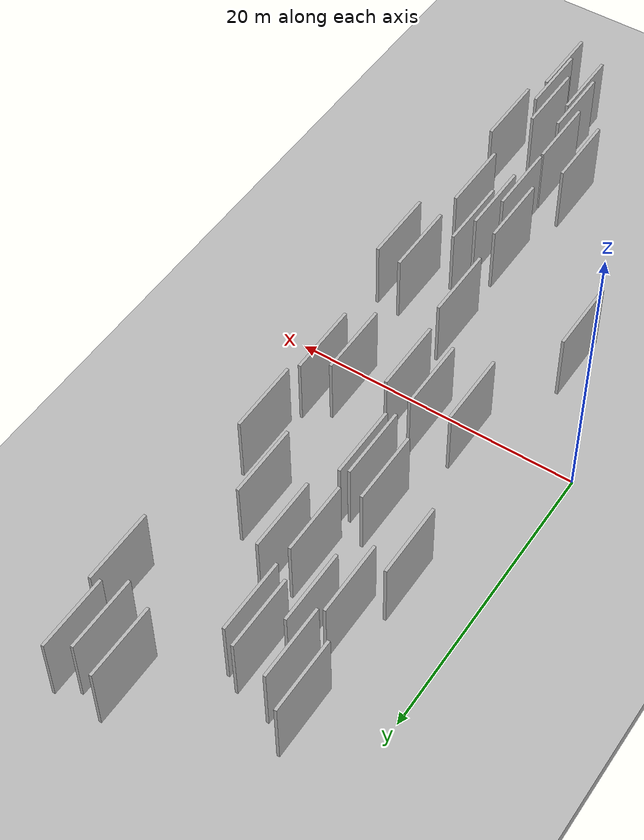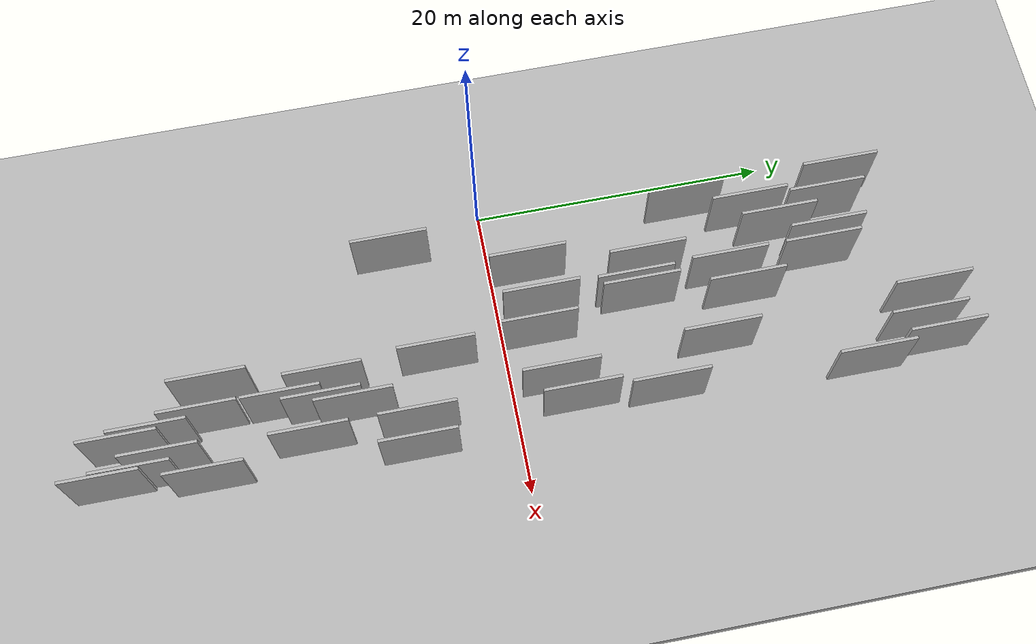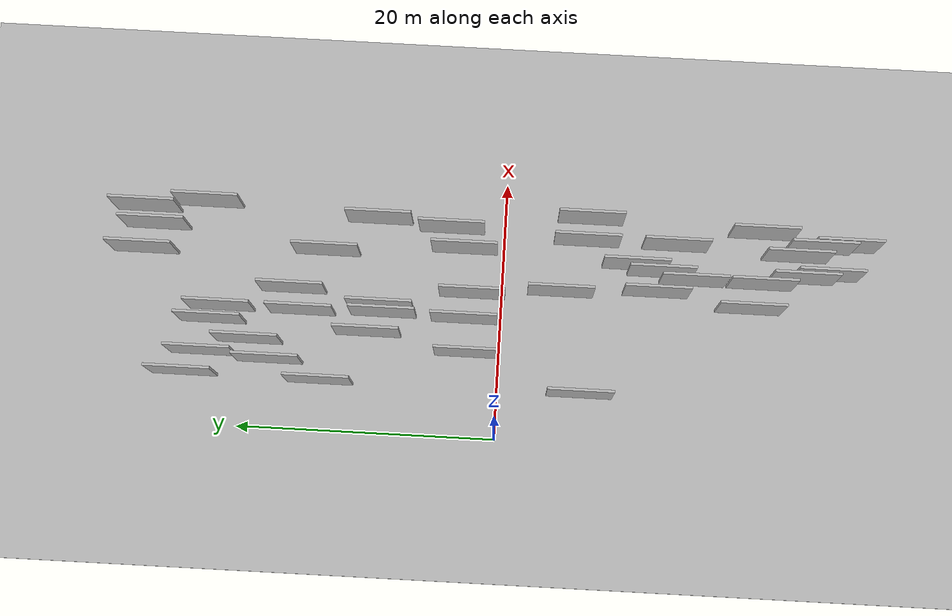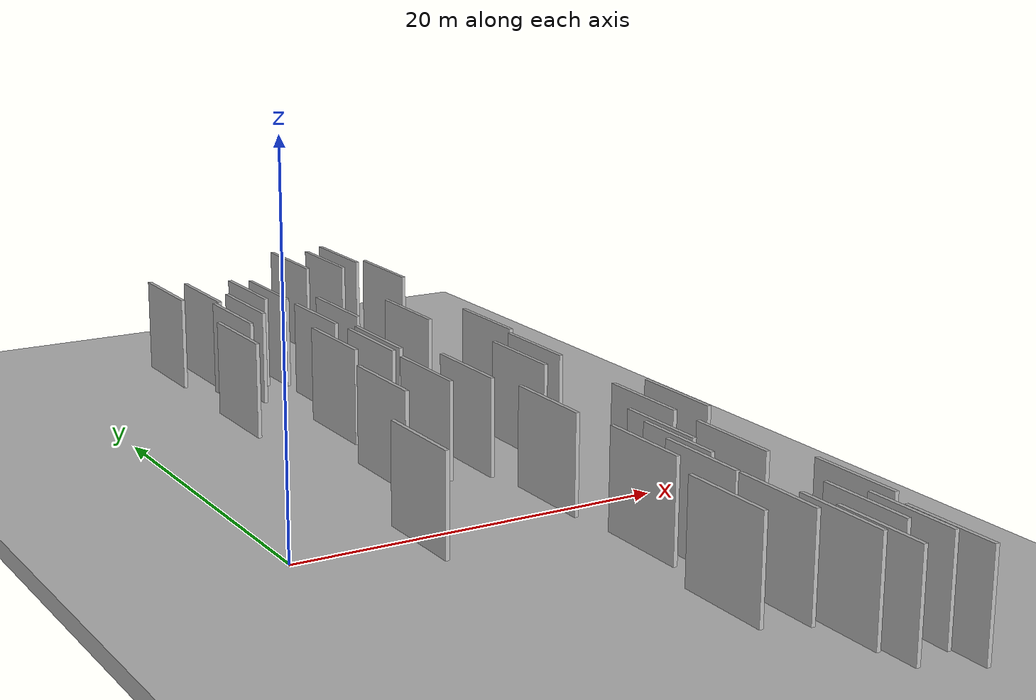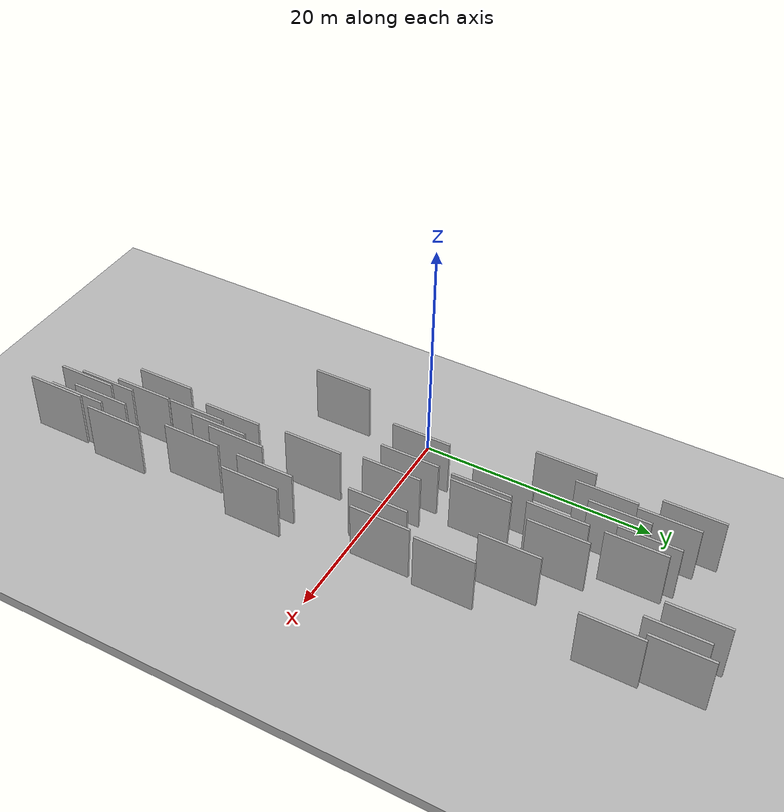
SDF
<?xml version="1.0" encoding="utf-8"?>

<sdf version="1.6">

   <world name="default">

      <gui fullscreen="0">

         <camera name="user_camera">

            <pose>-15 0 4.57585 0 0 0</pose>

            <view_controller>orbit</view_controller>

         </camera>

      </gui>

      <scene>

         <sky>

           <clouds>

             <speed>12</speed>

           </clouds>

         </sky>

         <ambient>0.4 0.4 0.4 1</ambient>

         <background>0.7 0.7 0.7 1</background>

         <shadows>1</shadows>

      </scene>

      <gravity>0 0 -9.8066</gravity>

      <magnetic_field>6e-06 2.3e-05 -4.2e-05</magnetic_field>

      <physics default="0" name="default_physics" type="ode">

         <ode>

            <solver>

               <type>quick</type>

               <iters>10</iters>

               <sor>1.0</sor>

               <use_dynamic_moi_rescaling>0</use_dynamic_moi_rescaling>

            </solver>

            <constraints>

               <cfm>0</cfm>

               <erp>0.2</erp>

               <contact_max_correcting_vel>100</contact_max_correcting_vel>

               <contact_surface_layer>0.001</contact_surface_layer>

            </constraints>

         </ode>

         <max_step_size>0.004</max_step_size>

         <real_time_factor>1</real_time_factor>

         <real_time_update_rate>250</real_time_update_rate>

      </physics>

      <light name="sun" type="directional">

         <cast_shadows>1</cast_shadows>

         <pose>0 0 10 0 0 0</pose>

         <diffuse>0.8 0.8 0.8 1</diffuse>

         <specular>0.2 0.2 0.2 1</specular>

         <attenuation>

            <range>1000</range>

            <constant>0.9</constant>

            <linear>0.01</linear>

            <quadratic>0.001</quadratic>

         </attenuation>

         <direction>-0.5 0.1 -0.9</direction>

      </light>

      <include>

         <name>ground_plane_1</name>

         <uri>model://HANNAS_ground_plane</uri>

         <pose>0 0 0  0 0 0</pose>

      </include>

      <include>

         <name>ground_plane_2</name>

         <uri>model://HANNAS_ground_plane</uri>

         <pose>100 0 0  0 0 0</pose>

      </include>

      <model name="HANNAS_wall_1">

         <static>1</static>

         <pose frame="">12.9203 27.4622 2.5 0.000000 0.000000 1.570796</pose>

         <link name="link">

            <pose frame="">0 0 2.50 0 0 0</pose>

            <collision name="collision">

               <geometry>

                  <box>

                     <size>5.00 0.2 5.00</size>

                  </box>

               </geometry>

               <max_contacts>10</max_contacts>

               <surface>

                  <contact>

                     <ode/>

                  </contact>

                  <bounce/>

                  <friction>

                     <torsional>

                        <ode/>

                     </torsional>

                     <ode/>

                  </friction>

               </surface>

            </collision>

            <visual name="visual">

               <cast_shadows>0</cast_shadows>

               <geometry>

                  <box>

                     <size>5.00 0.2 5.00</size>

                  </box>

               </geometry>

               <material>

                  <script>

                     <uri>model://HANNAS_wall/materials/scripts</uri>

                     <uri>model://HANNAS_wall/materials/textures</uri>

                     <name>vrc/HANNAS_wall</name>

                  </script>

               </material>

            </visual>

            <self_collide>0</self_collide>

            <enable_wind>0</enable_wind>

            <kinematic>0</kinematic>

         </link>

      </model>

      <model name="HANNAS_wall_2">

         <static>1</static>

         <pose frame="">11.5461 -11.6714 2.5 0.000000 0.000000 1.570796</pose>

         <link name="link">

            <pose frame="">0 0 2.50 0 0 0</pose>

            <collision name="collision">

               <geometry>

                  <box>

                     <size>5.00 0.2 5.00</size>

                  </box>

               </geometry>

               <max_contacts>10</max_contacts>

               <surface>

                  <contact>

                     <ode/>

                  </contact>

                  <bounce/>

                  <friction>

                     <torsional>

                        <ode/>

                     </torsional>

                     <ode/>

                  </friction>

               </surface>

            </collision>

            <visual name="visual">

               <cast_shadows>0</cast_shadows>

               <geometry>

                  <box>

                     <size>5.00 0.2 5.00</size>

                  </box>

               </geometry>

               <material>

                  <script>

                     <uri>model://HANNAS_wall/materials/scripts</uri>

                     <uri>model://HANNAS_wall/materials/textures</uri>

                     <name>vrc/HANNAS_wall</name>

                  </script>

               </material>

            </visual>

            <self_collide>0</self_collide>

            <enable_wind>0</enable_wind>

            <kinematic>0</kinematic>

         </link>

      </model>

      <model name="HANNAS_wall_3">

         <static>1</static>

         <pose frame="">10.7123 2.2798 2.5 0.000000 0.000000 1.570796</pose>

         <link name="link">

            <pose frame="">0 0 2.50 0 0 0</pose>

            <collision name="collision">

               <geometry>

                  <box>

                     <size>5.00 0.2 5.00</size>

                  </box>

               </geometry>

               <max_contacts>10</max_contacts>

               <surface>

                  <contact>

                     <ode/>

                  </contact>

                  <bounce/>

                  <friction>

                     <torsional>

                        <ode/>

                     </torsional>

                     <ode/>

                  </friction>

               </surface>

            </collision>

            <visual name="visual">

               <cast_shadows>0</cast_shadows>

               <geometry>

                  <box>

                     <size>5.00 0.2 5.00</size>

                  </box>

               </geometry>

               <material>

                  <script>

                     <uri>model://HANNAS_wall/materials/scripts</uri>

                     <uri>model://HANNAS_wall/materials/textures</uri>

                     <name>vrc/HANNAS_wall</name>

                  </script>

               </material>

            </visual>

            <self_collide>0</self_collide>

            <enable_wind>0</enable_wind>

            <kinematic>0</kinematic>

         </link>

      </model>

      <model name="HANNAS_wall_4">

         <static>1</static>

         <pose frame="">15.6072 -24.0280 2.5 0.000000 0.000000 1.570796</pose>

         <link name="link">

            <pose frame="">0 0 2.50 0 0 0</pose>

            <collision name="collision">

               <geometry>

                  <box>

                     <size>5.00 0.2 5.00</size>

                  </box>

               </geometry>

               <max_contacts>10</max_contacts>

               <surface>

                  <contact>

                     <ode/>

                  </contact>

                  <bounce/>

                  <friction>

                     <torsional>

                        <ode/>

                     </torsional>

                     <ode/>

                  </friction>

               </surface>

            </collision>

            <visual name="visual">

               <cast_shadows>0</cast_shadows>

               <geometry>

                  <box>

                     <size>5.00 0.2 5.00</size>

                  </box>

               </geometry>

               <material>

                  <script>

                     <uri>model://HANNAS_wall/materials/scripts</uri>

                     <uri>model://HANNAS_wall/materials/textures</uri>

                     <name>vrc/HANNAS_wall</name>

                  </script>

               </material>

            </visual>

            <self_collide>0</self_collide>

            <enable_wind>0</enable_wind>

            <kinematic>0</kinematic>

         </link>

      </model>

      <model name="HANNAS_wall_5">

         <static>1</static>

         <pose frame="">16.7725 22.7189 2.5 0.000000 0.000000 1.570796</pose>

         <link name="link">

            <pose frame="">0 0 2.50 0 0 0</pose>

            <collision name="collision">

               <geometry>

                  <box>

                     <size>5.00 0.2 5.00</size>

                  </box>

               </geometry>

               <max_contacts>10</max_contacts>

               <surface>

                  <contact>

                     <ode/>

                  </contact>

                  <bounce/>

                  <friction>

                     <torsional>

                        <ode/>

                     </torsional>

                     <ode/>

                  </friction>

               </surface>

            </collision>

            <visual name="visual">

               <cast_shadows>0</cast_shadows>

               <geometry>

                  <box>

                     <size>5.00 0.2 5.00</size>

                  </box>

               </geometry>

               <material>

                  <script>

                     <uri>model://HANNAS_wall/materials/scripts</uri>

                     <uri>model://HANNAS_wall/materials/textures</uri>

                     <name>vrc/HANNAS_wall</name>

                  </script>

               </material>

            </visual>

            <self_collide>0</self_collide>

            <enable_wind>0</enable_wind>

            <kinematic>0</kinematic>

         </link>

      </model>

      <model name="HANNAS_wall_6">

         <static>1</static>

         <pose frame="">16.1459 9.6242 2.5 0.000000 0.000000 1.570796</pose>

         <link name="link">

            <pose frame="">0 0 2.50 0 0 0</pose>

            <collision name="collision">

               <geometry>

                  <box>

                     <size>5.00 0.2 5.00</size>

                  </box>

               </geometry>

               <max_contacts>10</max_contacts>

               <surface>

                  <contact>

                     <ode/>

                  </contact>

                  <bounce/>

                  <friction>

                     <torsional>

                        <ode/>

                     </torsional>

                     <ode/>

                  </friction>

               </surface>

            </collision>

            <visual name="visual">

               <cast_shadows>0</cast_shadows>

               <geometry>

                  <box>

                     <size>5.00 0.2 5.00</size>

                  </box>

               </geometry>

               <material>

                  <script>

                     <uri>model://HANNAS_wall/materials/scripts</uri>

                     <uri>model://HANNAS_wall/materials/textures</uri>

                     <name>vrc/HANNAS_wall</name>

                  </script>

               </material>

            </visual>

            <self_collide>0</self_collide>

            <enable_wind>0</enable_wind>

            <kinematic>0</kinematic>

         </link>

      </model>

      <model name="HANNAS_wall_7">

         <static>1</static>

         <pose frame="">13.1717 -22.7713 2.5 0.000000 0.000000 1.570796</pose>

         <link name="link">

            <pose frame="">0 0 2.50 0 0 0</pose>

            <collision name="collision">

               <geometry>

                  <box>

                     <size>5.00 0.2 5.00</size>

                  </box>

               </geometry>

               <max_contacts>10</max_contacts>

               <surface>

                  <contact>

                     <ode/>

                  </contact>

                  <bounce/>

                  <friction>

                     <torsional>

                        <ode/>

                     </torsional>

                     <ode/>

                  </friction>

               </surface>

            </collision>

            <visual name="visual">

               <cast_shadows>0</cast_shadows>

               <geometry>

                  <box>

                     <size>5.00 0.2 5.00</size>

                  </box>

               </geometry>

               <material>

                  <script>

                     <uri>model://HANNAS_wall/materials/scripts</uri>

                     <uri>model://HANNAS_wall/materials/textures</uri>

                     <name>vrc/HANNAS_wall</name>

                  </script>

               </material>

            </visual>

            <self_collide>0</self_collide>

            <enable_wind>0</enable_wind>

            <kinematic>0</kinematic>

         </link>

      </model>

      <model name="HANNAS_wall_8">

         <static>1</static>

         <pose frame="">4.8966 17.3960 2.5 0.000000 0.000000 1.570796</pose>

         <link name="link">

            <pose frame="">0 0 2.50 0 0 0</pose>

            <collision name="collision">

               <geometry>

                  <box>

                     <size>5.00 0.2 5.00</size>

                  </box>

               </geometry>

               <max_contacts>10</max_contacts>

               <surface>

                  <contact>

                     <ode/>

                  </contact>

                  <bounce/>

                  <friction>

                     <torsional>

                        <ode/>

                     </torsional>

                     <ode/>

                  </friction>

               </surface>

            </collision>

            <visual name="visual">

               <cast_shadows>0</cast_shadows>

               <geometry>

                  <box>

                     <size>5.00 0.2 5.00</size>

                  </box>

               </geometry>

               <material>

                  <script>

                     <uri>model://HANNAS_wall/materials/scripts</uri>

                     <uri>model://HANNAS_wall/materials/textures</uri>

                     <name>vrc/HANNAS_wall</name>

                  </script>

               </material>

            </visual>

            <self_collide>0</self_collide>

            <enable_wind>0</enable_wind>

            <kinematic>0</kinematic>

         </link>

      </model>

      <model name="HANNAS_wall_9">

         <static>1</static>

         <pose frame="">14.8341 -22.2336 2.5 0.000000 0.000000 1.570796</pose>

         <link name="link">

            <pose frame="">0 0 2.50 0 0 0</pose>

            <collision name="collision">

               <geometry>

                  <box>

                     <size>5.00 0.2 5.00</size>

                  </box>

               </geometry>

               <max_contacts>10</max_contacts>

               <surface>

                  <contact>

                     <ode/>

                  </contact>

                  <bounce/>

                  <friction>

                     <torsional>

                        <ode/>

                     </torsional>

                     <ode/>

                  </friction>

               </surface>

            </collision>

            <visual name="visual">

               <cast_shadows>0</cast_shadows>

               <geometry>

                  <box>

                     <size>5.00 0.2 5.00</size>

                  </box>

               </geometry>

               <material>

                  <script>

                     <uri>model://HANNAS_wall/materials/scripts</uri>

                     <uri>model://HANNAS_wall/materials/textures</uri>

                     <name>vrc/HANNAS_wall</name>

                  </script>

               </material>

            </visual>

            <self_collide>0</self_collide>

            <enable_wind>0</enable_wind>

            <kinematic>0</kinematic>

         </link>

      </model>

      <model name="HANNAS_wall_10">

         <static>1</static>

         <pose frame="">13.5826 -10.0143 2.5 0.000000 0.000000 1.570796</pose>

         <link name="link">

            <pose frame="">0 0 2.50 0 0 0</pose>

            <collision name="collision">

               <geometry>

                  <box>

                     <size>5.00 0.2 5.00</size>

                  </box>

               </geometry>

               <max_contacts>10</max_contacts>

               <surface>

                  <contact>

                     <ode/>

                  </contact>

                  <bounce/>

                  <friction>

                     <torsional>

                        <ode/>

                     </torsional>

                     <ode/>

                  </friction>

               </surface>

            </collision>

            <visual name="visual">

               <cast_shadows>0</cast_shadows>

               <geometry>

                  <box>

                     <size>5.00 0.2 5.00</size>

                  </box>

               </geometry>

               <material>

                  <script>

                     <uri>model://HANNAS_wall/materials/scripts</uri>

                     <uri>model://HANNAS_wall/materials/textures</uri>

                     <name>vrc/HANNAS_wall</name>

                  </script>

               </material>

            </visual>

            <self_collide>0</self_collide>

            <enable_wind>0</enable_wind>

            <kinematic>0</kinematic>

         </link>

      </model>

      <model name="HANNAS_wall_11">

         <static>1</static>

         <pose frame="">6.3353 19.0176 2.5 0.000000 0.000000 1.570796</pose>

         <link name="link">

            <pose frame="">0 0 2.50 0 0 0</pose>

            <collision name="collision">

               <geometry>

                  <box>

                     <size>5.00 0.2 5.00</size>

                  </box>

               </geometry>

               <max_contacts>10</max_contacts>

               <surface>

                  <contact>

                     <ode/>

                  </contact>

                  <bounce/>

                  <friction>

                     <torsional>

                        <ode/>

                     </torsional>

                     <ode/>

                  </friction>

               </surface>

            </collision>

            <visual name="visual">

               <cast_shadows>0</cast_shadows>

               <geometry>

                  <box>

                     <size>5.00 0.2 5.00</size>

                  </box>

               </geometry>

               <material>

                  <script>

                     <uri>model://HANNAS_wall/materials/scripts</uri>

                     <uri>model://HANNAS_wall/materials/textures</uri>

                     <name>vrc/HANNAS_wall</name>

                  </script>

               </material>

            </visual>

            <self_collide>0</self_collide>

            <enable_wind>0</enable_wind>

            <kinematic>0</kinematic>

         </link>

      </model>

      <model name="HANNAS_wall_12">

         <static>1</static>

         <pose frame="">8.9002 8.9577 2.5 0.000000 0.000000 1.570796</pose>

         <link name="link">

            <pose frame="">0 0 2.50 0 0 0</pose>

            <collision name="collision">

               <geometry>

                  <box>

                     <size>5.00 0.2 5.00</size>

                  </box>

               </geometry>

               <max_contacts>10</max_contacts>

               <surface>

                  <contact>

                     <ode/>

                  </contact>

                  <bounce/>

                  <friction>

                     <torsional>

                        <ode/>

                     </torsional>

                     <ode/>

                  </friction>

               </surface>

            </collision>

            <visual name="visual">

               <cast_shadows>0</cast_shadows>

               <geometry>

                  <box>

                     <size>5.00 0.2 5.00</size>

                  </box>

               </geometry>

               <material>

                  <script>

                     <uri>model://HANNAS_wall/materials/scripts</uri>

                     <uri>model://HANNAS_wall/materials/textures</uri>

                     <name>vrc/HANNAS_wall</name>

                  </script>

               </material>

            </visual>

            <self_collide>0</self_collide>

            <enable_wind>0</enable_wind>

            <kinematic>0</kinematic>

         </link>

      </model>

      <model name="HANNAS_wall_13">

         <static>1</static>

         <pose frame="">3.5009 13.4850 2.5 0.000000 0.000000 1.570796</pose>

         <link name="link">

            <pose frame="">0 0 2.50 0 0 0</pose>

            <collision name="collision">

               <geometry>

                  <box>

                     <size>5.00 0.2 5.00</size>

                  </box>

               </geometry>

               <max_contacts>10</max_contacts>

               <surface>

                  <contact>

                     <ode/>

                  </contact>

                  <bounce/>

                  <friction>

                     <torsional>

                        <ode/>

                     </torsional>

                     <ode/>

                  </friction>

               </surface>

            </collision>

            <visual name="visual">

               <cast_shadows>0</cast_shadows>

               <geometry>

                  <box>

                     <size>5.00 0.2 5.00</size>

                  </box>

               </geometry>

               <material>

                  <script>

                     <uri>model://HANNAS_wall/materials/scripts</uri>

                     <uri>model://HANNAS_wall/materials/textures</uri>

                     <name>vrc/HANNAS_wall</name>

                  </script>

               </material>

            </visual>

            <self_collide>0</self_collide>

            <enable_wind>0</enable_wind>

            <kinematic>0</kinematic>

         </link>

      </model>

      <model name="HANNAS_wall_14">

         <static>1</static>

         <pose frame="">16.9659 -6.4878 2.5 0.000000 0.000000 1.570796</pose>

         <link name="link">

            <pose frame="">0 0 2.50 0 0 0</pose>

            <collision name="collision">

               <geometry>

                  <box>

                     <size>5.00 0.2 5.00</size>

                  </box>

               </geometry>

               <max_contacts>10</max_contacts>

               <surface>

                  <contact>

                     <ode/>

                  </contact>

                  <bounce/>

                  <friction>

                     <torsional>

                        <ode/>

                     </torsional>

                     <ode/>

                  </friction>

               </surface>

            </collision>

            <visual name="visual">

               <cast_shadows>0</cast_shadows>

               <geometry>

                  <box>

                     <size>5.00 0.2 5.00</size>

                  </box>

               </geometry>

               <material>

                  <script>

                     <uri>model://HANNAS_wall/materials/scripts</uri>

                     <uri>model://HANNAS_wall/materials/textures</uri>

                     <name>vrc/HANNAS_wall</name>

                  </script>

               </material>

            </visual>

            <self_collide>0</self_collide>

            <enable_wind>0</enable_wind>

            <kinematic>0</kinematic>

         </link>

      </model>

      <model name="HANNAS_wall_15">

         <static>1</static>

         <pose frame="">10.4096 15.9132 2.5 0.000000 0.000000 1.570796</pose>

         <link name="link">

            <pose frame="">0 0 2.50 0 0 0</pose>

            <collision name="collision">

               <geometry>

                  <box>

                     <size>5.00 0.2 5.00</size>

                  </box>

               </geometry>

               <max_contacts>10</max_contacts>

               <surface>

                  <contact>

                     <ode/>

                  </contact>

                  <bounce/>

                  <friction>

                     <torsional>

                        <ode/>

                     </torsional>

                     <ode/>

                  </friction>

               </surface>

            </collision>

            <visual name="visual">

               <cast_shadows>0</cast_shadows>

               <geometry>

                  <box>

                     <size>5.00 0.2 5.00</size>

                  </box>

               </geometry>

               <material>

                  <script>

                     <uri>model://HANNAS_wall/materials/scripts</uri>

                     <uri>model://HANNAS_wall/materials/textures</uri>

                     <name>vrc/HANNAS_wall</name>

                  </script>

               </material>

            </visual>

            <self_collide>0</self_collide>

            <enable_wind>0</enable_wind>

            <kinematic>0</kinematic>

         </link>

      </model>

      <model name="HANNAS_wall_16">

         <static>1</static>

         <pose frame="">5.2708 22.4795 2.5 0.000000 0.000000 1.570796</pose>

         <link name="link">

            <pose frame="">0 0 2.50 0 0 0</pose>

            <collision name="collision">

               <geometry>

                  <box>

                     <size>5.00 0.2 5.00</size>

                  </box>

               </geometry>

               <max_contacts>10</max_contacts>

               <surface>

                  <contact>

                     <ode/>

                  </contact>

                  <bounce/>

                  <friction>

                     <torsional>

                        <ode/>

                     </torsional>

                     <ode/>

                  </friction>

               </surface>

            </collision>

            <visual name="visual">

               <cast_shadows>0</cast_shadows>

               <geometry>

                  <box>

                     <size>5.00 0.2 5.00</size>

                  </box>

               </geometry>

               <material>

                  <script>

                     <uri>model://HANNAS_wall/materials/scripts</uri>

                     <uri>model://HANNAS_wall/materials/textures</uri>

                     <name>vrc/HANNAS_wall</name>

                  </script>

               </material>

            </visual>

            <self_collide>0</self_collide>

            <enable_wind>0</enable_wind>

            <kinematic>0</kinematic>

         </link>

      </model>

      <model name="HANNAS_wall_17">

         <static>1</static>

         <pose frame="">7.3440 10.0413 2.5 0.000000 0.000000 1.570796</pose>

         <link name="link">

            <pose frame="">0 0 2.50 0 0 0</pose>

            <collision name="collision">

               <geometry>

                  <box>

                     <size>5.00 0.2 5.00</size>

                  </box>

               </geometry>

               <max_contacts>10</max_contacts>

               <surface>

                  <contact>

                     <ode/>

                  </contact>

                  <bounce/>

                  <friction>

                     <torsional>

                        <ode/>

                     </torsional>

                     <ode/>

                  </friction>

               </surface>

            </collision>

            <visual name="visual">

               <cast_shadows>0</cast_shadows>

               <geometry>

                  <box>

                     <size>5.00 0.2 5.00</size>

                  </box>

               </geometry>

               <material>

                  <script>

                     <uri>model://HANNAS_wall/materials/scripts</uri>

                     <uri>model://HANNAS_wall/materials/textures</uri>

                     <name>vrc/HANNAS_wall</name>

                  </script>

               </material>

            </visual>

            <self_collide>0</self_collide>

            <enable_wind>0</enable_wind>

            <kinematic>0</kinematic>

         </link>

      </model>

      <model name="HANNAS_wall_18">

         <static>1</static>

         <pose frame="">9.4286 9.1943 2.5 0.000000 0.000000 1.570796</pose>

         <link name="link">

            <pose frame="">0 0 2.50 0 0 0</pose>

            <collision name="collision">

               <geometry>

                  <box>

                     <size>5.00 0.2 5.00</size>

                  </box>

               </geometry>

               <max_contacts>10</max_contacts>

               <surface>

                  <contact>

                     <ode/>

                  </contact>

                  <bounce/>

                  <friction>

                     <torsional>

                        <ode/>

                     </torsional>

                     <ode/>

                  </friction>

               </surface>

            </collision>

            <visual name="visual">

               <cast_shadows>0</cast_shadows>

               <geometry>

                  <box>

                     <size>5.00 0.2 5.00</size>

                  </box>

               </geometry>

               <material>

                  <script>

                     <uri>model://HANNAS_wall/materials/scripts</uri>

                     <uri>model://HANNAS_wall/materials/textures</uri>

                     <name>vrc/HANNAS_wall</name>

                  </script>

               </material>

            </visual>

            <self_collide>0</self_collide>

            <enable_wind>0</enable_wind>

            <kinematic>0</kinematic>

         </link>

      </model>

      <model name="HANNAS_wall_19">

         <static>1</static>

         <pose frame="">12.5606 -14.4296 2.5 0.000000 0.000000 1.570796</pose>

         <link name="link">

            <pose frame="">0 0 2.50 0 0 0</pose>

            <collision name="collision">

               <geometry>

                  <box>

                     <size>5.00 0.2 5.00</size>

                  </box>

               </geometry>

               <max_contacts>10</max_contacts>

               <surface>

                  <contact>

                     <ode/>

                  </contact>

                  <bounce/>

                  <friction>

                     <torsional>

                        <ode/>

                     </torsional>

                     <ode/>

                  </friction>

               </surface>

            </collision>

            <visual name="visual">

               <cast_shadows>0</cast_shadows>

               <geometry>

                  <box>

                     <size>5.00 0.2 5.00</size>

                  </box>

               </geometry>

               <material>

                  <script>

                     <uri>model://HANNAS_wall/materials/scripts</uri>

                     <uri>model://HANNAS_wall/materials/textures</uri>

                     <name>vrc/HANNAS_wall</name>

                  </script>

               </material>

            </visual>

            <self_collide>0</self_collide>

            <enable_wind>0</enable_wind>

            <kinematic>0</kinematic>

         </link>

      </model>

      <model name="HANNAS_wall_20">

         <static>1</static>

         <pose frame="">10.6122 -18.8031 2.5 0.000000 0.000000 1.570796</pose>

         <link name="link">

            <pose frame="">0 0 2.50 0 0 0</pose>

            <collision name="collision">

               <geometry>

                  <box>

                     <size>5.00 0.2 5.00</size>

                  </box>

               </geometry>

               <max_contacts>10</max_contacts>

               <surface>

                  <contact>

                     <ode/>

                  </contact>

                  <bounce/>

                  <friction>

                     <torsional>

                        <ode/>

                     </torsional>

                     <ode/>

                  </friction>

               </surface>

            </collision>

            <visual name="visual">

               <cast_shadows>0</cast_shadows>

               <geometry>

                  <box>

                     <size>5.00 0.2 5.00</size>

                  </box>

               </geometry>

               <material>

                  <script>

                     <uri>model://HANNAS_wall/materials/scripts</uri>

                     <uri>model://HANNAS_wall/materials/textures</uri>

                     <name>vrc/HANNAS_wall</name>

                  </script>

               </material>

            </visual>

            <self_collide>0</self_collide>

            <enable_wind>0</enable_wind>

            <kinematic>0</kinematic>

         </link>

      </model>

      <model name="HANNAS_wall_21">

         <static>1</static>

         <pose frame="">15.6922 4.0724 2.5 0.000000 0.000000 1.570796</pose>

         <link name="link">

            <pose frame="">0 0 2.50 0 0 0</pose>

            <collision name="collision">

               <geometry>

                  <box>

                     <size>5.00 0.2 5.00</size>

                  </box>

               </geometry>

               <max_contacts>10</max_contacts>

               <surface>

                  <contact>

                     <ode/>

                  </contact>

                  <bounce/>

                  <friction>

                     <torsional>

                        <ode/>

                     </torsional>

                     <ode/>

                  </friction>

               </surface>

            </collision>

            <visual name="visual">

               <cast_shadows>0</cast_shadows>

               <geometry>

                  <box>

                     <size>5.00 0.2 5.00</size>

                  </box>

               </geometry>

               <material>

                  <script>

                     <uri>model://HANNAS_wall/materials/scripts</uri>

                     <uri>model://HANNAS_wall/materials/textures</uri>

                     <name>vrc/HANNAS_wall</name>

                  </script>

               </material>

            </visual>

            <self_collide>0</self_collide>

            <enable_wind>0</enable_wind>

            <kinematic>0</kinematic>

         </link>

      </model>

      <model name="HANNAS_wall_22">

         <static>1</static>

         <pose frame="">14.8339 26.6393 2.5 0.000000 0.000000 1.570796</pose>

         <link name="link">

            <pose frame="">0 0 2.50 0 0 0</pose>

            <collision name="collision">

               <geometry>

                  <box>

                     <size>5.00 0.2 5.00</size>

                  </box>

               </geometry>

               <max_contacts>10</max_contacts>

               <surface>

                  <contact>

                     <ode/>

                  </contact>

                  <bounce/>

                  <friction>

                     <torsional>

                        <ode/>

                     </torsional>

                     <ode/>

                  </friction>

               </surface>

            </collision>

            <visual name="visual">

               <cast_shadows>0</cast_shadows>

               <geometry>

                  <box>

                     <size>5.00 0.2 5.00</size>

                  </box>

               </geometry>

               <material>

                  <script>

                     <uri>model://HANNAS_wall/materials/scripts</uri>

                     <uri>model://HANNAS_wall/materials/textures</uri>

                     <name>vrc/HANNAS_wall</name>

                  </script>

               </material>

            </visual>

            <self_collide>0</self_collide>

            <enable_wind>0</enable_wind>

            <kinematic>0</kinematic>

         </link>

      </model>

      <model name="HANNAS_wall_23">

         <static>1</static>

         <pose frame="">14.1491 3.0309 2.5 0.000000 0.000000 1.570796</pose>

         <link name="link">

            <pose frame="">0 0 2.50 0 0 0</pose>

            <collision name="collision">

               <geometry>

                  <box>

                     <size>5.00 0.2 5.00</size>

                  </box>

               </geometry>

               <max_contacts>10</max_contacts>

               <surface>

                  <contact>

                     <ode/>

                  </contact>

                  <bounce/>

                  <friction>

                     <torsional>

                        <ode/>

                     </torsional>

                     <ode/>

                  </friction>

               </surface>

            </collision>

            <visual name="visual">

               <cast_shadows>0</cast_shadows>

               <geometry>

                  <box>

                     <size>5.00 0.2 5.00</size>

                  </box>

               </geometry>

               <material>

                  <script>

                     <uri>model://HANNAS_wall/materials/scripts</uri>

                     <uri>model://HANNAS_wall/materials/textures</uri>

                     <name>vrc/HANNAS_wall</name>

                  </script>

               </material>

            </visual>

            <self_collide>0</self_collide>

            <enable_wind>0</enable_wind>

            <kinematic>0</kinematic>

         </link>

      </model>

      <model name="HANNAS_wall_24">

         <static>1</static>

         <pose frame="">15.2235 -13.0170 2.5 0.000000 0.000000 1.570796</pose>

         <link name="link">

            <pose frame="">0 0 2.50 0 0 0</pose>

            <collision name="collision">

               <geometry>

                  <box>

                     <size>5.00 0.2 5.00</size>

                  </box>

               </geometry>

               <max_contacts>10</max_contacts>

               <surface>

                  <contact>

                     <ode/>

                  </contact>

                  <bounce/>

                  <friction>

                     <torsional>

                        <ode/>

                     </torsional>

                     <ode/>

                  </friction>

               </surface>

            </collision>

            <visual name="visual">

               <cast_shadows>0</cast_shadows>

               <geometry>

                  <box>

                     <size>5.00 0.2 5.00</size>

                  </box>

               </geometry>

               <material>

                  <script>

                     <uri>model://HANNAS_wall/materials/scripts</uri>

                     <uri>model://HANNAS_wall/materials/textures</uri>

                     <name>vrc/HANNAS_wall</name>

                  </script>

               </material>

            </visual>

            <self_collide>0</self_collide>

            <enable_wind>0</enable_wind>

            <kinematic>0</kinematic>

         </link>

      </model>

      <model name="HANNAS_wall_25">

         <static>1</static>

         <pose frame="">16.1749 27.4548 2.5 0.000000 0.000000 1.570796</pose>

         <link name="link">

            <pose frame="">0 0 2.50 0 0 0</pose>

            <collision name="collision">

               <geometry>

                  <box>

                     <size>5.00 0.2 5.00</size>

                  </box>

               </geometry>

               <max_contacts>10</max_contacts>

               <surface>

                  <contact>

                     <ode/>

                  </contact>

                  <bounce/>

                  <friction>

                     <torsional>

                        <ode/>

                     </torsional>

                     <ode/>

                  </friction>

               </surface>

            </collision>

            <visual name="visual">

               <cast_shadows>0</cast_shadows>

               <geometry>

                  <box>

                     <size>5.00 0.2 5.00</size>

                  </box>

               </geometry>

               <material>

                  <script>

                     <uri>model://HANNAS_wall/materials/scripts</uri>

                     <uri>model://HANNAS_wall/materials/textures</uri>

                     <name>vrc/HANNAS_wall</name>

                  </script>

               </material>

            </visual>

            <self_collide>0</self_collide>

            <enable_wind>0</enable_wind>

            <kinematic>0</kinematic>

         </link>

      </model>

      <model name="HANNAS_wall_26">

         <static>1</static>

         <pose frame="">15.8432 -25.9167 2.5 0.000000 0.000000 1.570796</pose>

         <link name="link">

            <pose frame="">0 0 2.50 0 0 0</pose>

            <collision name="collision">

               <geometry>

                  <box>

                     <size>5.00 0.2 5.00</size>

                  </box>

               </geometry>

               <max_contacts>10</max_contacts>

               <surface>

                  <contact>

                     <ode/>

                  </contact>

                  <bounce/>

                  <friction>

                     <torsional>

                        <ode/>

                     </torsional>

                     <ode/>

                  </friction>

               </surface>

            </collision>

            <visual name="visual">

               <cast_shadows>0</cast_shadows>

               <geometry>

                  <box>

                     <size>5.00 0.2 5.00</size>

                  </box>

               </geometry>

               <material>

                  <script>

                     <uri>model://HANNAS_wall/materials/scripts</uri>

                     <uri>model://HANNAS_wall/materials/textures</uri>

                     <name>vrc/HANNAS_wall</name>

                  </script>

               </material>

            </visual>

            <self_collide>0</self_collide>

            <enable_wind>0</enable_wind>

            <kinematic>0</kinematic>

         </link>

      </model>

      <model name="HANNAS_wall_27">

         <static>1</static>

         <pose frame="">11.2037 -4.4236 2.5 0.000000 0.000000 1.570796</pose>

         <link name="link">

            <pose frame="">0 0 2.50 0 0 0</pose>

            <collision name="collision">

               <geometry>

                  <box>

                     <size>5.00 0.2 5.00</size>

                  </box>

               </geometry>

               <max_contacts>10</max_contacts>

               <surface>

                  <contact>

                     <ode/>

                  </contact>

                  <bounce/>

                  <friction>

                     <torsional>

                        <ode/>

                     </torsional>

                     <ode/>

                  </friction>

               </surface>

            </collision>

            <visual name="visual">

               <cast_shadows>0</cast_shadows>

               <geometry>

                  <box>

                     <size>5.00 0.2 5.00</size>

                  </box>

               </geometry>

               <material>

                  <script>

                     <uri>model://HANNAS_wall/materials/scripts</uri>

                     <uri>model://HANNAS_wall/materials/textures</uri>

                     <name>vrc/HANNAS_wall</name>

                  </script>

               </material>

            </visual>

            <self_collide>0</self_collide>

            <enable_wind>0</enable_wind>

            <kinematic>0</kinematic>

         </link>

      </model>

      <model name="HANNAS_wall_28">

         <static>1</static>

         <pose frame="">3.6374 23.8120 2.5 0.000000 0.000000 1.570796</pose>

         <link name="link">

            <pose frame="">0 0 2.50 0 0 0</pose>

            <collision name="collision">

               <geometry>

                  <box>

                     <size>5.00 0.2 5.00</size>

                  </box>

               </geometry>

               <max_contacts>10</max_contacts>

               <surface>

                  <contact>

                     <ode/>

                  </contact>

                  <bounce/>

                  <friction>

                     <torsional>

                        <ode/>

                     </torsional>

                     <ode/>

                  </friction>

               </surface>

            </collision>

            <visual name="visual">

               <cast_shadows>0</cast_shadows>

               <geometry>

                  <box>

                     <size>5.00 0.2 5.00</size>

                  </box>

               </geometry>

               <material>

                  <script>

                     <uri>model://HANNAS_wall/materials/scripts</uri>

                     <uri>model://HANNAS_wall/materials/textures</uri>

                     <name>vrc/HANNAS_wall</name>

                  </script>

               </material>

            </visual>

            <self_collide>0</self_collide>

            <enable_wind>0</enable_wind>

            <kinematic>0</kinematic>

         </link>

      </model>

      <model name="HANNAS_wall_29">

         <static>1</static>

         <pose frame="">13.5188 -24.6177 2.5 0.000000 0.000000 1.570796</pose>

         <link name="link">

            <pose frame="">0 0 2.50 0 0 0</pose>

            <collision name="collision">

               <geometry>

                  <box>

                     <size>5.00 0.2 5.00</size>

                  </box>

               </geometry>

               <max_contacts>10</max_contacts>

               <surface>

                  <contact>

                     <ode/>

                  </contact>

                  <bounce/>

                  <friction>

                     <torsional>

                        <ode/>

                     </torsional>

                     <ode/>

                  </friction>

               </surface>

            </collision>

            <visual name="visual">

               <cast_shadows>0</cast_shadows>

               <geometry>

                  <box>

                     <size>5.00 0.2 5.00</size>

                  </box>

               </geometry>

               <material>

                  <script>

                     <uri>model://HANNAS_wall/materials/scripts</uri>

                     <uri>model://HANNAS_wall/materials/textures</uri>

                     <name>vrc/HANNAS_wall</name>

                  </script>

               </material>

            </visual>

            <self_collide>0</self_collide>

            <enable_wind>0</enable_wind>

            <kinematic>0</kinematic>

         </link>

      </model>

      <model name="HANNAS_wall_30">

         <static>1</static>

         <pose frame="">13.1099 -11.9654 2.5 0.000000 0.000000 1.570796</pose>

         <link name="link">

            <pose frame="">0 0 2.50 0 0 0</pose>

            <collision name="collision">

               <geometry>

                  <box>

                     <size>5.00 0.2 5.00</size>

                  </box>

               </geometry>

               <max_contacts>10</max_contacts>

               <surface>

                  <contact>

                     <ode/>

                  </contact>

                  <bounce/>

                  <friction>

                     <torsional>

                        <ode/>

                     </torsional>

                     <ode/>

                  </friction>

               </surface>

            </collision>

            <visual name="visual">

               <cast_shadows>0</cast_shadows>

               <geometry>

                  <box>

                     <size>5.00 0.2 5.00</size>

                  </box>

               </geometry>

               <material>

                  <script>

                     <uri>model://HANNAS_wall/materials/scripts</uri>

                     <uri>model://HANNAS_wall/materials/textures</uri>

                     <name>vrc/HANNAS_wall</name>

                  </script>

               </material>

            </visual>

            <self_collide>0</self_collide>

            <enable_wind>0</enable_wind>

            <kinematic>0</kinematic>

         </link>

      </model>

      <model name="HANNAS_wall_31">

         <static>1</static>

         <pose frame="">16.5026 -19.6375 2.5 0.000000 0.000000 1.570796</pose>

         <link name="link">

            <pose frame="">0 0 2.50 0 0 0</pose>

            <collision name="collision">

               <geometry>

                  <box>

                     <size>5.00 0.2 5.00</size>

                  </box>

               </geometry>

               <max_contacts>10</max_contacts>

               <surface>

                  <contact>

                     <ode/>

                  </contact>

                  <bounce/>

                  <friction>

                     <torsional>

                        <ode/>

                     </torsional>

                     <ode/>

                  </friction>

               </surface>

            </collision>

            <visual name="visual">

               <cast_shadows>0</cast_shadows>

               <geometry>

                  <box>

                     <size>5.00 0.2 5.00</size>

                  </box>

               </geometry>

               <material>

                  <script>

                     <uri>model://HANNAS_wall/materials/scripts</uri>

                     <uri>model://HANNAS_wall/materials/textures</uri>

                     <name>vrc/HANNAS_wall</name>

                  </script>

               </material>

            </visual>

            <self_collide>0</self_collide>

            <enable_wind>0</enable_wind>

            <kinematic>0</kinematic>

         </link>

      </model>

      <model name="HANNAS_wall_32">

         <static>1</static>

         <pose frame="">8.7587 21.3074 2.5 0.000000 0.000000 1.570796</pose>

         <link name="link">

            <pose frame="">0 0 2.50 0 0 0</pose>

            <collision name="collision">

               <geometry>

                  <box>

                     <size>5.00 0.2 5.00</size>

                  </box>

               </geometry>

               <max_contacts>10</max_contacts>

               <surface>

                  <contact>

                     <ode/>

                  </contact>

                  <bounce/>

                  <friction>

                     <torsional>

                        <ode/>

                     </torsional>

                     <ode/>

                  </friction>

               </surface>

            </collision>

            <visual name="visual">

               <cast_shadows>0</cast_shadows>

               <geometry>

                  <box>

                     <size>5.00 0.2 5.00</size>

                  </box>

               </geometry>

               <material>

                  <script>

                     <uri>model://HANNAS_wall/materials/scripts</uri>

                     <uri>model://HANNAS_wall/materials/textures</uri>

                     <name>vrc/HANNAS_wall</name>

                  </script>

               </material>

            </visual>

            <self_collide>0</self_collide>

            <enable_wind>0</enable_wind>

            <kinematic>0</kinematic>

         </link>

      </model>

      <model name="HANNAS_wall_33">

         <static>1</static>

         <pose frame="">6.1484 2.4059 2.5 0.000000 0.000000 1.570796</pose>

         <link name="link">

            <pose frame="">0 0 2.50 0 0 0</pose>

            <collision name="collision">

               <geometry>

                  <box>

                     <size>5.00 0.2 5.00</size>

                  </box>

               </geometry>

               <max_contacts>10</max_contacts>

               <surface>

                  <contact>

                     <ode/>

                  </contact>

                  <bounce/>

                  <friction>

                     <torsional>

                        <ode/>

                     </torsional>

                     <ode/>

                  </friction>

               </surface>

            </collision>

            <visual name="visual">

               <cast_shadows>0</cast_shadows>

               <geometry>

                  <box>

                     <size>5.00 0.2 5.00</size>

                  </box>

               </geometry>

               <material>

                  <script>

                     <uri>model://HANNAS_wall/materials/scripts</uri>

                     <uri>model://HANNAS_wall/materials/textures</uri>

                     <name>vrc/HANNAS_wall</name>

                  </script>

               </material>

            </visual>

            <self_collide>0</self_collide>

            <enable_wind>0</enable_wind>

            <kinematic>0</kinematic>

         </link>

      </model>

      <model name="HANNAS_wall_34">

         <static>1</static>

         <pose frame="">3.4774 -6.2241 2.5 0.000000 0.000000 1.570796</pose>

         <link name="link">

            <pose frame="">0 0 2.50 0 0 0</pose>

            <collision name="collision">

               <geometry>

                  <box>

                     <size>5.00 0.2 5.00</size>

                  </box>

               </geometry>

               <max_contacts>10</max_contacts>

               <surface>

                  <contact>

                     <ode/>

                  </contact>

                  <bounce/>

                  <friction>

                     <torsional>

                        <ode/>

                     </torsional>

                     <ode/>

                  </friction>

               </surface>

            </collision>

            <visual name="visual">

               <cast_shadows>0</cast_shadows>

               <geometry>

                  <box>

                     <size>5.00 0.2 5.00</size>

                  </box>

               </geometry>

               <material>

                  <script>

                     <uri>model://HANNAS_wall/materials/scripts</uri>

                     <uri>model://HANNAS_wall/materials/textures</uri>

                     <name>vrc/HANNAS_wall</name>

                  </script>

               </material>

            </visual>

            <self_collide>0</self_collide>

            <enable_wind>0</enable_wind>

            <kinematic>0</kinematic>

         </link>

      </model>

      <model name="HANNAS_wall_35">

         <static>1</static>

         <pose frame="">15.2349 -6.2545 2.5 0.000000 0.000000 1.570796</pose>

         <link name="link">

            <pose frame="">0 0 2.50 0 0 0</pose>

            <collision name="collision">

               <geometry>

                  <box>

                     <size>5.00 0.2 5.00</size>

                  </box>

               </geometry>

               <max_contacts>10</max_contacts>

               <surface>

                  <contact>

                     <ode/>

                  </contact>

                  <bounce/>

                  <friction>

                     <torsional>

                        <ode/>

                     </torsional>

                     <ode/>

                  </friction>

               </surface>

            </collision>

            <visual name="visual">

               <cast_shadows>0</cast_shadows>

               <geometry>

                  <box>

                     <size>5.00 0.2 5.00</size>

                  </box>

               </geometry>

               <material>

                  <script>

                     <uri>model://HANNAS_wall/materials/scripts</uri>

                     <uri>model://HANNAS_wall/materials/textures</uri>

                     <name>vrc/HANNAS_wall</name>

                  </script>

               </material>

            </visual>

            <self_collide>0</self_collide>

            <enable_wind>0</enable_wind>

            <kinematic>0</kinematic>

         </link>

      </model>

      <model name="HANNAS_wall_36">

         <static>1</static>

         <pose frame="">13.4567 13.5019 2.5 0.000000 0.000000 1.570796</pose>

         <link name="link">

            <pose frame="">0 0 2.50 0 0 0</pose>

            <collision name="collision">

               <geometry>

                  <box>

                     <size>5.00 0.2 5.00</size>

                  </box>

               </geometry>

               <max_contacts>10</max_contacts>

               <surface>

                  <contact>

                     <ode/>

                  </contact>

                  <bounce/>

                  <friction>

                     <torsional>

                        <ode/>

                     </torsional>

                     <ode/>

                  </friction>

               </surface>

            </collision>

            <visual name="visual">

               <cast_shadows>0</cast_shadows>

               <geometry>

                  <box>

                     <size>5.00 0.2 5.00</size>

                  </box>

               </geometry>

               <material>

                  <script>

                     <uri>model://HANNAS_wall/materials/scripts</uri>

                     <uri>model://HANNAS_wall/materials/textures</uri>

                     <name>vrc/HANNAS_wall</name>

                  </script>

               </material>

            </visual>

            <self_collide>0</self_collide>

            <enable_wind>0</enable_wind>

            <kinematic>0</kinematic>

         </link>

      </model>

      <model name="HANNAS_wall_37">

         <static>1</static>

         <pose frame="">8.7518 15.1389 2.5 0.000000 0.000000 1.570796</pose>

         <link name="link">

            <pose frame="">0 0 2.50 0 0 0</pose>

            <collision name="collision">

               <geometry>

                  <box>

                     <size>5.00 0.2 5.00</size>

                  </box>

               </geometry>

               <max_contacts>10</max_contacts>

               <surface>

                  <contact>

                     <ode/>

                  </contact>

                  <bounce/>

                  <friction>

                     <torsional>

                        <ode/>

                     </torsional>

                     <ode/>

                  </friction>

               </surface>

            </collision>

            <visual name="visual">

               <cast_shadows>0</cast_shadows>

               <geometry>

                  <box>

                     <size>5.00 0.2 5.00</size>

                  </box>

               </geometry>

               <material>

                  <script>

                     <uri>model://HANNAS_wall/materials/scripts</uri>

                     <uri>model://HANNAS_wall/materials/textures</uri>

                     <name>vrc/HANNAS_wall</name>

                  </script>

               </material>

            </visual>

            <self_collide>0</self_collide>

            <enable_wind>0</enable_wind>

            <kinematic>0</kinematic>

         </link>

      </model>

      <model name="HANNAS_wall_38">

         <static>1</static>

         <pose frame="">7.7603 21.9148 2.5 0.000000 0.000000 1.570796</pose>

         <link name="link">

            <pose frame="">0 0 2.50 0 0 0</pose>

            <collision name="collision">

               <geometry>

                  <box>

                     <size>5.00 0.2 5.00</size>

                  </box>

               </geometry>

               <max_contacts>10</max_contacts>

               <surface>

                  <contact>

                     <ode/>

                  </contact>

                  <bounce/>

                  <friction>

                     <torsional>

                        <ode/>

                     </torsional>

                     <ode/>

                  </friction>

               </surface>

            </collision>

            <visual name="visual">

               <cast_shadows>0</cast_shadows>

               <geometry>

                  <box>

                     <size>5.00 0.2 5.00</size>

                  </box>

               </geometry>

               <material>

                  <script>

                     <uri>model://HANNAS_wall/materials/scripts</uri>

                     <uri>model://HANNAS_wall/materials/textures</uri>

                     <name>vrc/HANNAS_wall</name>

                  </script>

               </material>

            </visual>

            <self_collide>0</self_collide>

            <enable_wind>0</enable_wind>

            <kinematic>0</kinematic>

         </link>

      </model>

      <model name="HANNAS_wall_39">

         <static>1</static>

         <pose frame="">12.5531 -19.6235 2.5 0.000000 0.000000 1.570796</pose>

         <link name="link">

            <pose frame="">0 0 2.50 0 0 0</pose>

            <collision name="collision">

               <geometry>

                  <box>

                     <size>5.00 0.2 5.00</size>

                  </box>

               </geometry>

               <max_contacts>10</max_contacts>

               <surface>

                  <contact>

                     <ode/>

                  </contact>

                  <bounce/>

                  <friction>

                     <torsional>

                        <ode/>

                     </torsional>

                     <ode/>

                  </friction>

               </surface>

            </collision>

            <visual name="visual">

               <cast_shadows>0</cast_shadows>

               <geometry>

                  <box>

                     <size>5.00 0.2 5.00</size>

                  </box>

               </geometry>

               <material>

                  <script>

                     <uri>model://HANNAS_wall/materials/scripts</uri>

                     <uri>model://HANNAS_wall/materials/textures</uri>

                     <name>vrc/HANNAS_wall</name>

                  </script>

               </material>

            </visual>

            <self_collide>0</self_collide>

            <enable_wind>0</enable_wind>

            <kinematic>0</kinematic>

         </link>

      </model>

      <model name="HANNAS_wall_40">

         <static>1</static>

         <pose frame="">8.7452 2.7971 2.5 0.000000 0.000000 1.570796</pose>

         <link name="link">

            <pose frame="">0 0 2.50 0 0 0</pose>

            <collision name="collision">

               <geometry>

                  <box>

                     <size>5.00 0.2 5.00</size>

                  </box>

               </geometry>

               <max_contacts>10</max_contacts>

               <surface>

                  <contact>

                     <ode/>

                  </contact>

                  <bounce/>

                  <friction>

                     <torsional>

                        <ode/>

                     </torsional>

                     <ode/>

                  </friction>

               </surface>

            </collision>

            <visual name="visual">

               <cast_shadows>0</cast_shadows>

               <geometry>

                  <box>

                     <size>5.00 0.2 5.00</size>

                  </box>

               </geometry>

               <material>

                  <script>

                     <uri>model://HANNAS_wall/materials/scripts</uri>

                     <uri>model://HANNAS_wall/materials/textures</uri>

                     <name>vrc/HANNAS_wall</name>

                  </script>

               </material>

            </visual>

            <self_collide>0</self_collide>

            <enable_wind>0</enable_wind>

            <kinematic>0</kinematic>

         </link>

      </model>

   </world>

</sdf>
